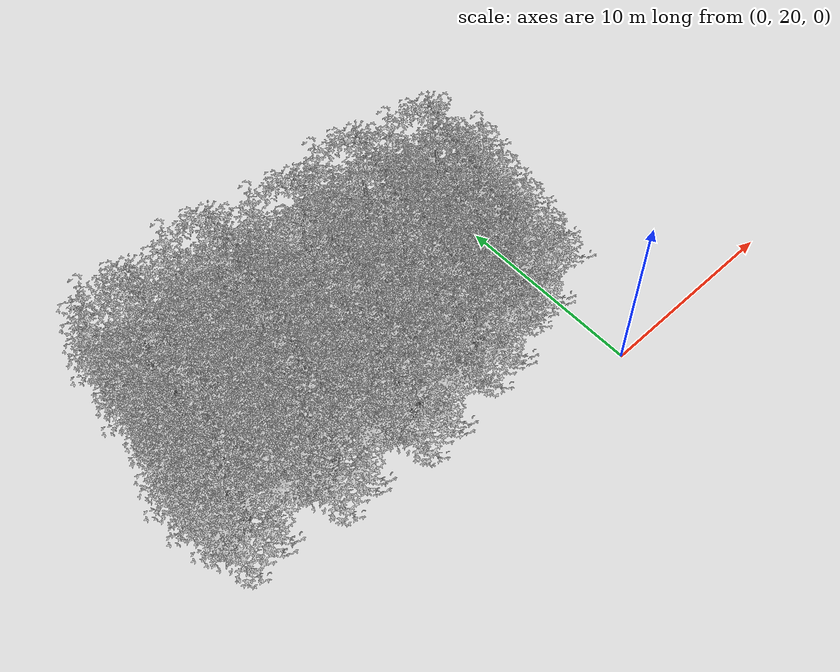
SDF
<sdf version="1.3">
 <world name="default">
  <model name="finihed_7">
   <pose>-2.000000 25.586800 0.000000 0.000000 0.000000 0.000000</pose>
   <static>1</static>
   <link name="link">
    <inertial>
     <mass>10.000000</mass>
     <inertia>
      <ixx>0.001000</ixx>
      <ixy>0.000000</ixy>
      <ixz>0.000000</ixz>
      <iyy>0.001000</iyy>
      <iyz>0.000000</iyz>
      <izz>0.001000</izz>
     </inertia>
    </inertial>
    <collision name="collision">
     <geometry><cylinder><radius>0.150000</radius><length>5.000000</length></cylinder></geometry>
    </collision>
    <visual name="visual">
     <geometry>
      <mesh><uri>model://finihed/meshes/finihed.dae</uri><scale>1.000000 1.000000 1.000000</scale></mesh>
     </geometry>
    </visual>
    <velocity_decay><linear>0.000000</linear><angular>0.000000</angular></velocity_decay>
   </link>
  </model>
  <model name="finihed_8">
   <pose>-1.541750 27.000000 0.000000 0.000000 0.000000 0.000000</pose>
   <static>1</static>
   <link name="link">
    <inertial>
     <mass>10.000000</mass>
     <inertia>
      <ixx>0.001000</ixx>
      <ixy>0.000000</ixy>
      <ixz>0.000000</ixz>
      <iyy>0.001000</iyy>
      <iyz>0.000000</iyz>
      <izz>0.001000</izz>
     </inertia>
    </inertial>
    <collision name="collision">
     <geometry><cylinder><radius>0.150000</radius><length>5.000000</length></cylinder></geometry>
    </collision>
    <visual name="visual">
     <geometry>
      <mesh><uri>model://finihed/meshes/finihed.dae</uri><scale>1.000000 1.000000 1.000000</scale></mesh>
     </geometry>
    </visual>
    <velocity_decay><linear>0.000000</linear><angular>0.000000</angular></velocity_decay>
   </link>
  </model>
  <model name="finihed_9">
   <pose>-1.000000 29.000000 0.000000 0.000000 0.000000 0.000000</pose>
   <static>1</static>
   <link name="link">
    <inertial>
     <mass>10.000000</mass>
     <inertia>
      <ixx>0.001000</ixx>
      <ixy>0.000000</ixy>
      <ixz>0.000000</ixz>
      <iyy>0.001000</iyy>
      <iyz>0.000000</iyz>
      <izz>0.001000</izz>
     </inertia>
    </inertial>
    <collision name="collision">
     <geometry><cylinder><radius>0.150000</radius><length>5.000000</length></cylinder></geometry>
    </collision>
    <visual name="visual">
     <geometry>
      <mesh><uri>model://finihed/meshes/finihed.dae</uri><scale>1.000000 1.000000 1.000000</scale></mesh>
     </geometry>
    </visual>
    <velocity_decay><linear>0.000000</linear><angular>0.000000</angular></velocity_decay>
   </link>
  </model>
  <model name="finihed_15">
   <pose>-5.595620 24.553100 0.000000 0.000000 0.000000 0.000000</pose>
   <static>1</static>
   <link name="link">
    <inertial>
     <mass>10.000000</mass>
     <inertia>
      <ixx>0.001000</ixx>
      <ixy>0.000000</ixy>
      <ixz>0.000000</ixz>
      <iyy>0.001000</iyy>
      <iyz>0.000000</iyz>
      <izz>0.001000</izz>
     </inertia>
    </inertial>
    <collision name="collision">
     <geometry><cylinder><radius>0.150000</radius><length>5.000000</length></cylinder></geometry>
    </collision>
    <visual name="visual">
     <geometry>
      <mesh><uri>model://finihed/meshes/finihed.dae</uri><scale>1.000000 1.000000 1.000000</scale></mesh>
     </geometry>
    </visual>
    <velocity_decay><linear>0.000000</linear><angular>0.000000</angular></velocity_decay>
   </link>
  </model>
  <model name="finihed_16">
   <pose>-5.536400 26.000000 0.000000 0.000000 0.000000 0.000000</pose>
   <static>1</static>
   <link name="link">
    <inertial>
     <mass>10.000000</mass>
     <inertia>
      <ixx>0.001000</ixx>
      <ixy>0.000000</ixy>
      <ixz>0.000000</ixz>
      <iyy>0.001000</iyy>
      <iyz>0.000000</iyz>
      <izz>0.001000</izz>
     </inertia>
    </inertial>
    <collision name="collision">
     <geometry><cylinder><radius>0.150000</radius><length>5.000000</length></cylinder></geometry>
    </collision>
    <visual name="visual">
     <geometry>
      <mesh><uri>model://finihed/meshes/finihed.dae</uri><scale>1.000000 1.000000 1.000000</scale></mesh>
     </geometry>
    </visual>
    <velocity_decay><linear>0.000000</linear><angular>0.000000</angular></velocity_decay>
   </link>
  </model>
  <model name="finihed_17">
   <pose>-5.000000 28.000000 0.000000 0.000000 0.000000 0.000000</pose>
   <static>1</static>
   <link name="link">
    <inertial>
     <mass>10.000000</mass>
     <inertia>
      <ixx>0.001000</ixx>
      <ixy>0.000000</ixy>
      <ixz>0.000000</ixz>
      <iyy>0.001000</iyy>
      <iyz>0.000000</iyz>
      <izz>0.001000</izz>
     </inertia>
    </inertial>
    <collision name="collision">
     <geometry><cylinder><radius>0.150000</radius><length>5.000000</length></cylinder></geometry>
    </collision>
    <visual name="visual">
     <geometry>
      <mesh><uri>model://finihed/meshes/finihed.dae</uri><scale>1.000000 1.000000 1.000000</scale></mesh>
     </geometry>
    </visual>
    <velocity_decay><linear>0.000000</linear><angular>0.000000</angular></velocity_decay>
   </link>
  </model>
  <model name="finihed_24">
   <pose>-10.000000 24.000000 0.000000 0.000000 0.000000 0.000000</pose>
   <static>1</static>
   <link name="link">
    <inertial>
     <mass>10.000000</mass>
     <inertia>
      <ixx>0.001000</ixx>
      <ixy>0.000000</ixy>
      <ixz>0.000000</ixz>
      <iyy>0.001000</iyy>
      <iyz>0.000000</iyz>
      <izz>0.001000</izz>
     </inertia>
    </inertial>
    <collision name="collision">
     <geometry><cylinder><radius>0.150000</radius><length>5.000000</length></cylinder></geometry>
    </collision>
    <visual name="visual">
     <geometry>
      <mesh><uri>model://finihed/meshes/finihed.dae</uri><scale>1.000000 1.000000 1.000000</scale></mesh>
     </geometry>
    </visual>
    <velocity_decay><linear>0.000000</linear><angular>0.000000</angular></velocity_decay>
   </link>
  </model>
  <model name="finihed_25">
   <pose>-10.000000 25.457300 0.000000 0.000000 0.000000 0.000000</pose>
   <static>1</static>
   <link name="link">
    <inertial>
     <mass>10.000000</mass>
     <inertia>
      <ixx>0.001000</ixx>
      <ixy>0.000000</ixy>
      <ixz>0.000000</ixz>
      <iyy>0.001000</iyy>
      <iyz>0.000000</iyz>
      <izz>0.001000</izz>
     </inertia>
    </inertial>
    <collision name="collision">
     <geometry><cylinder><radius>0.150000</radius><length>5.000000</length></cylinder></geometry>
    </collision>
    <visual name="visual">
     <geometry>
      <mesh><uri>model://finihed/meshes/finihed.dae</uri><scale>1.000000 1.000000 1.000000</scale></mesh>
     </geometry>
    </visual>
    <velocity_decay><linear>0.000000</linear><angular>0.000000</angular></velocity_decay>
   </link>
  </model>
  <model name="finihed_26">
   <pose>-9.548600 27.000000 0.000000 0.000000 0.000000 0.000000</pose>
   <static>1</static>
   <link name="link">
    <inertial>
     <mass>10.000000</mass>
     <inertia>
      <ixx>0.001000</ixx>
      <ixy>0.000000</ixy>
      <ixz>0.000000</ixz>
      <iyy>0.001000</iyy>
      <iyz>0.000000</iyz>
      <izz>0.001000</izz>
     </inertia>
    </inertial>
    <collision name="collision">
     <geometry><cylinder><radius>0.150000</radius><length>5.000000</length></cylinder></geometry>
    </collision>
    <visual name="visual">
     <geometry>
      <mesh><uri>model://finihed/meshes/finihed.dae</uri><scale>1.000000 1.000000 1.000000</scale></mesh>
     </geometry>
    </visual>
    <velocity_decay><linear>0.000000</linear><angular>0.000000</angular></velocity_decay>
   </link>
  </model>
  <model name="finihed_27">
   <pose>-9.000000 28.545000 0.000000 0.000000 0.000000 0.000000</pose>
   <static>1</static>
   <link name="link">
    <inertial>
     <mass>10.000000</mass>
     <inertia>
      <ixx>0.001000</ixx>
      <ixy>0.000000</ixy>
      <ixz>0.000000</ixz>
      <iyy>0.001000</iyy>
      <iyz>0.000000</iyz>
      <izz>0.001000</izz>
     </inertia>
    </inertial>
    <collision name="collision">
     <geometry><cylinder><radius>0.150000</radius><length>5.000000</length></cylinder></geometry>
    </collision>
    <visual name="visual">
     <geometry>
      <mesh><uri>model://finihed/meshes/finihed.dae</uri><scale>1.000000 1.000000 1.000000</scale></mesh>
     </geometry>
    </visual>
    <velocity_decay><linear>0.000000</linear><angular>0.000000</angular></velocity_decay>
   </link>
  </model>
  <model name="finihed_28">
   <pose>-9.000000 30.000000 0.000000 0.000000 0.000000 0.000000</pose>
   <static>1</static>
   <link name="link">
    <inertial>
     <mass>10.000000</mass>
     <inertia>
      <ixx>0.001000</ixx>
      <ixy>0.000000</ixy>
      <ixz>0.000000</ixz>
      <iyy>0.001000</iyy>
      <iyz>0.000000</iyz>
      <izz>0.001000</izz>
     </inertia>
    </inertial>
    <collision name="collision">
     <geometry><cylinder><radius>0.150000</radius><length>5.000000</length></cylinder></geometry>
    </collision>
    <visual name="visual">
     <geometry>
      <mesh><uri>model://finihed/meshes/finihed.dae</uri><scale>1.000000 1.000000 1.000000</scale></mesh>
     </geometry>
    </visual>
    <velocity_decay><linear>0.000000</linear><angular>0.000000</angular></velocity_decay>
   </link>
  </model>
  <model name="finihed_29">
   <pose>-5.000000 30.000000 0.000000 0.000000 0.000000 0.000000</pose>
   <static>1</static>
   <link name="link">
    <inertial>
     <mass>10.000000</mass>
     <inertia>
      <ixx>0.001000</ixx>
      <ixy>0.000000</ixy>
      <ixz>0.000000</ixz>
      <iyy>0.001000</iyy>
      <iyz>0.000000</iyz>
      <izz>0.001000</izz>
     </inertia>
    </inertial>
    <collision name="collision">
     <geometry><cylinder><radius>0.150000</radius><length>5.000000</length></cylinder></geometry>
    </collision>
    <visual name="visual">
     <geometry>
      <mesh><uri>model://finihed/meshes/finihed.dae</uri><scale>1.000000 1.000000 1.000000</scale></mesh>
     </geometry>
    </visual>
    <velocity_decay><linear>0.000000</linear><angular>0.000000</angular></velocity_decay>
   </link>
  </model>
  <model name="finihed_30">
   <pose>-0.598205 31.000000 0.000000 0.000000 0.000000 0.000000</pose>
   <static>1</static>
   <link name="link">
    <inertial>
     <mass>10.000000</mass>
     <inertia>
      <ixx>0.001000</ixx>
      <ixy>0.000000</ixy>
      <ixz>0.000000</ixz>
      <iyy>0.001000</iyy>
      <iyz>0.000000</iyz>
      <izz>0.001000</izz>
     </inertia>
    </inertial>
    <collision name="collision">
     <geometry><cylinder><radius>0.150000</radius><length>5.000000</length></cylinder></geometry>
    </collision>
    <visual name="visual">
     <geometry>
      <mesh><uri>model://finihed/meshes/finihed.dae</uri><scale>1.000000 1.000000 1.000000</scale></mesh>
     </geometry>
    </visual>
    <velocity_decay><linear>0.000000</linear><angular>0.000000</angular></velocity_decay>
   </link>
  </model>
  <model name="finihed_31">
   <pose>-9.000000 32.000000 0.000000 0.000000 0.000000 0.000000</pose>
   <static>1</static>
   <link name="link">
    <inertial>
     <mass>10.000000</mass>
     <inertia>
      <ixx>0.001000</ixx>
      <ixy>0.000000</ixy>
      <ixz>0.000000</ixz>
      <iyy>0.001000</iyy>
      <iyz>0.000000</iyz>
      <izz>0.001000</izz>
     </inertia>
    </inertial>
    <collision name="collision">
     <geometry><cylinder><radius>0.150000</radius><length>5.000000</length></cylinder></geometry>
    </collision>
    <visual name="visual">
     <geometry>
      <mesh><uri>model://finihed/meshes/finihed.dae</uri><scale>1.000000 1.000000 1.000000</scale></mesh>
     </geometry>
    </visual>
    <velocity_decay><linear>0.000000</linear><angular>0.000000</angular></velocity_decay>
   </link>
  </model>
  <model name="finihed_32">
   <pose>-4.473840 32.000000 0.000000 0.000000 0.000000 0.000000</pose>
   <static>1</static>
   <link name="link">
    <inertial>
     <mass>10.000000</mass>
     <inertia>
      <ixx>0.001000</ixx>
      <ixy>0.000000</ixy>
      <ixz>0.000000</ixz>
      <iyy>0.001000</iyy>
      <iyz>0.000000</iyz>
      <izz>0.001000</izz>
     </inertia>
    </inertial>
    <collision name="collision">
     <geometry><cylinder><radius>0.150000</radius><length>5.000000</length></cylinder></geometry>
    </collision>
    <visual name="visual">
     <geometry>
      <mesh><uri>model://finihed/meshes/finihed.dae</uri><scale>1.000000 1.000000 1.000000</scale></mesh>
     </geometry>
    </visual>
    <velocity_decay><linear>0.000000</linear><angular>0.000000</angular></velocity_decay>
   </link>
  </model>
  <model name="finihed_33">
   <pose>0.000000 33.000000 0.000000 0.000000 0.000000 0.000000</pose>
   <static>1</static>
   <link name="link">
    <inertial>
     <mass>10.000000</mass>
     <inertia>
      <ixx>0.001000</ixx>
      <ixy>0.000000</ixy>
      <ixz>0.000000</ixz>
      <iyy>0.001000</iyy>
      <iyz>0.000000</iyz>
      <izz>0.001000</izz>
     </inertia>
    </inertial>
    <collision name="collision">
     <geometry><cylinder><radius>0.150000</radius><length>5.000000</length></cylinder></geometry>
    </collision>
    <visual name="visual">
     <geometry>
      <mesh><uri>model://finihed/meshes/finihed.dae</uri><scale>1.000000 1.000000 1.000000</scale></mesh>
     </geometry>
    </visual>
    <velocity_decay><linear>0.000000</linear><angular>0.000000</angular></velocity_decay>
   </link>
  </model>
  <model name="finihed_34">
   <pose>-4.000000 34.000000 0.000000 0.000000 0.000000 0.000000</pose>
   <static>1</static>
   <link name="link">
    <inertial>
     <mass>10.000000</mass>
     <inertia>
      <ixx>0.001000</ixx>
      <ixy>0.000000</ixy>
      <ixz>0.000000</ixz>
      <iyy>0.001000</iyy>
      <iyz>0.000000</iyz>
      <izz>0.001000</izz>
     </inertia>
    </inertial>
    <collision name="collision">
     <geometry><cylinder><radius>0.150000</radius><length>5.000000</length></cylinder></geometry>
    </collision>
    <visual name="visual">
     <geometry>
      <mesh><uri>model://finihed/meshes/finihed.dae</uri><scale>1.000000 1.000000 1.000000</scale></mesh>
     </geometry>
    </visual>
    <velocity_decay><linear>0.000000</linear><angular>0.000000</angular></velocity_decay>
   </link>
  </model>
  <model name="finihed_35">
   <pose>-8.000000 34.000000 0.000000 0.000000 0.000000 0.000000</pose>
   <static>1</static>
   <link name="link">
    <inertial>
     <mass>10.000000</mass>
     <inertia>
      <ixx>0.001000</ixx>
      <ixy>0.000000</ixy>
      <ixz>0.000000</ixz>
      <iyy>0.001000</iyy>
      <iyz>0.000000</iyz>
      <izz>0.001000</izz>
     </inertia>
    </inertial>
    <collision name="collision">
     <geometry><cylinder><radius>0.150000</radius><length>5.000000</length></cylinder></geometry>
    </collision>
    <visual name="visual">
     <geometry>
      <mesh><uri>model://finihed/meshes/finihed.dae</uri><scale>1.000000 1.000000 1.000000</scale></mesh>
     </geometry>
    </visual>
    <velocity_decay><linear>0.000000</linear><angular>0.000000</angular></velocity_decay>
   </link>
  </model>
  <model name="finihed_37">
   <pose>-12.422800 35.000000 0.000000 0.000000 0.000000 0.000000</pose>
   <static>1</static>
   <link name="link">
    <inertial>
     <mass>10.000000</mass>
     <inertia>
      <ixx>0.001000</ixx>
      <ixy>0.000000</ixy>
      <ixz>0.000000</ixz>
      <iyy>0.001000</iyy>
      <iyz>0.000000</iyz>
      <izz>0.001000</izz>
     </inertia>
    </inertial>
    <collision name="collision">
     <geometry><cylinder><radius>0.150000</radius><length>5.000000</length></cylinder></geometry>
    </collision>
    <visual name="visual">
     <geometry>
      <mesh><uri>model://finihed/meshes/finihed.dae</uri><scale>1.000000 1.000000 1.000000</scale></mesh>
     </geometry>
    </visual>
    <velocity_decay><linear>0.000000</linear><angular>0.000000</angular></velocity_decay>
   </link>
  </model>
  <model name="finihed_38">
   <pose>-14.407700 26.000000 0.000000 0.000000 0.000000 0.000000</pose>
   <static>1</static>
   <link name="link">
    <inertial>
     <mass>10.000000</mass>
     <inertia>
      <ixx>0.001000</ixx>
      <ixy>0.000000</ixy>
      <ixz>0.000000</ixz>
      <iyy>0.001000</iyy>
      <iyz>0.000000</iyz>
      <izz>0.001000</izz>
     </inertia>
    </inertial>
    <collision name="collision">
     <geometry><cylinder><radius>0.150000</radius><length>5.000000</length></cylinder></geometry>
    </collision>
    <visual name="visual">
     <geometry>
      <mesh><uri>model://finihed/meshes/finihed.dae</uri><scale>1.000000 1.000000 1.000000</scale></mesh>
     </geometry>
    </visual>
    <velocity_decay><linear>0.000000</linear><angular>0.000000</angular></velocity_decay>
   </link>
  </model>
  <model name="finihed_39">
   <pose>-13.000000 31.000000 0.000000 0.000000 0.000000 0.000000</pose>
   <static>1</static>
   <link name="link">
    <inertial>
     <mass>10.000000</mass>
     <inertia>
      <ixx>0.001000</ixx>
      <ixy>0.000000</ixy>
      <ixz>0.000000</ixz>
      <iyy>0.001000</iyy>
      <iyz>0.000000</iyz>
      <izz>0.001000</izz>
     </inertia>
    </inertial>
    <collision name="collision">
     <geometry><cylinder><radius>0.150000</radius><length>5.000000</length></cylinder></geometry>
    </collision>
    <visual name="visual">
     <geometry>
      <mesh><uri>model://finihed/meshes/finihed.dae</uri><scale>1.000000 1.000000 1.000000</scale></mesh>
     </geometry>
    </visual>
    <velocity_decay><linear>0.000000</linear><angular>0.000000</angular></velocity_decay>
   </link>
  </model>
  <model name="finihed_43">
   <pose>-13.525600 28.434800 0.000000 0.000000 0.000000 0.000000</pose>
   <static>1</static>
   <link name="link">
    <inertial>
     <mass>10.000000</mass>
     <inertia>
      <ixx>0.001000</ixx>
      <ixy>0.000000</ixy>
      <ixz>0.000000</ixz>
      <iyy>0.001000</iyy>
      <iyz>0.000000</iyz>
      <izz>0.001000</izz>
     </inertia>
    </inertial>
    <collision name="collision">
     <geometry><cylinder><radius>0.150000</radius><length>5.000000</length></cylinder></geometry>
    </collision>
    <visual name="visual">
     <geometry>
      <mesh><uri>model://finihed/meshes/finihed.dae</uri><scale>1.000000 1.000000 1.000000</scale></mesh>
     </geometry>
    </visual>
    <velocity_decay><linear>0.000000</linear><angular>0.000000</angular></velocity_decay>
   </link>
  </model>
  <model name="finihed_44">
   <pose>-12.554800 33.422900 0.000000 0.000000 0.000000 0.000000</pose>
   <static>1</static>
   <link name="link">
    <inertial>
     <mass>10.000000</mass>
     <inertia>
      <ixx>0.001000</ixx>
      <ixy>0.000000</ixy>
      <ixz>0.000000</ixz>
      <iyy>0.001000</iyy>
      <iyz>0.000000</iyz>
      <izz>0.001000</izz>
     </inertia>
    </inertial>
    <collision name="collision">
     <geometry><cylinder><radius>0.150000</radius><length>5.000000</length></cylinder></geometry>
    </collision>
    <visual name="visual">
     <geometry>
      <mesh><uri>model://finihed/meshes/finihed.dae</uri><scale>1.000000 1.000000 1.000000</scale></mesh>
     </geometry>
    </visual>
    <velocity_decay><linear>0.000000</linear><angular>0.000000</angular></velocity_decay>
   </link>
  </model>
  <model name="finihed_45">
   <pose>-13.000000 32.000000 0.000000 0.000000 0.000000 0.000000</pose>
   <static>1</static>
   <link name="link">
    <inertial>
     <mass>10.000000</mass>
     <inertia>
      <ixx>0.001000</ixx>
      <ixy>0.000000</ixy>
      <ixz>0.000000</ixz>
      <iyy>0.001000</iyy>
      <iyz>0.000000</iyz>
      <izz>0.001000</izz>
     </inertia>
    </inertial>
    <collision name="collision">
     <geometry><cylinder><radius>0.150000</radius><length>5.000000</length></cylinder></geometry>
    </collision>
    <visual name="visual">
     <geometry>
      <mesh><uri>model://finihed/meshes/finihed.dae</uri><scale>1.000000 1.000000 1.000000</scale></mesh>
     </geometry>
    </visual>
    <velocity_decay><linear>0.000000</linear><angular>0.000000</angular></velocity_decay>
   </link>
  </model>
  <model name="finihed_46">
   <pose>-13.418400 29.466800 0.000000 0.000000 0.000000 0.000000</pose>
   <static>1</static>
   <link name="link">
    <inertial>
     <mass>10.000000</mass>
     <inertia>
      <ixx>0.001000</ixx>
      <ixy>0.000000</ixy>
      <ixz>0.000000</ixz>
      <iyy>0.001000</iyy>
      <iyz>0.000000</iyz>
      <izz>0.001000</izz>
     </inertia>
    </inertial>
    <collision name="collision">
     <geometry><cylinder><radius>0.150000</radius><length>5.000000</length></cylinder></geometry>
    </collision>
    <visual name="visual">
     <geometry>
      <mesh><uri>model://finihed/meshes/finihed.dae</uri><scale>1.000000 1.000000 1.000000</scale></mesh>
     </geometry>
    </visual>
    <velocity_decay><linear>0.000000</linear><angular>0.000000</angular></velocity_decay>
   </link>
  </model>
  <model name="finihed_47">
   <pose>-14.000000 27.000000 0.000000 0.000000 0.000000 0.000000</pose>
   <static>1</static>
   <link name="link">
    <inertial>
     <mass>10.000000</mass>
     <inertia>
      <ixx>0.001000</ixx>
      <ixy>0.000000</ixy>
      <ixz>0.000000</ixz>
      <iyy>0.001000</iyy>
      <iyz>0.000000</iyz>
      <izz>0.001000</izz>
     </inertia>
    </inertial>
    <collision name="collision">
     <geometry><cylinder><radius>0.150000</radius><length>5.000000</length></cylinder></geometry>
    </collision>
    <visual name="visual">
     <geometry>
      <mesh><uri>model://finihed/meshes/finihed.dae</uri><scale>1.000000 1.000000 1.000000</scale></mesh>
     </geometry>
    </visual>
    <velocity_decay><linear>0.000000</linear><angular>0.000000</angular></velocity_decay>
   </link>
  </model>
  <model name="finihed_48">
   <pose>-14.441000 24.433000 0.000000 0.000000 0.000000 0.000000</pose>
   <static>1</static>
   <link name="link">
    <inertial>
     <mass>10.000000</mass>
     <inertia>
      <ixx>0.001000</ixx>
      <ixy>0.000000</ixy>
      <ixz>0.000000</ixz>
      <iyy>0.001000</iyy>
      <iyz>0.000000</iyz>
      <izz>0.001000</izz>
     </inertia>
    </inertial>
    <collision name="collision">
     <geometry><cylinder><radius>0.150000</radius><length>5.000000</length></cylinder></geometry>
    </collision>
    <visual name="visual">
     <geometry>
      <mesh><uri>model://finihed/meshes/finihed.dae</uri><scale>1.000000 1.000000 1.000000</scale></mesh>
     </geometry>
    </visual>
    <velocity_decay><linear>0.000000</linear><angular>0.000000</angular></velocity_decay>
   </link>
  </model>
  <model name="finihed_53">
   <pose>-17.000000 35.000000 0.000000 0.000000 0.000000 0.000000</pose>
   <static>1</static>
   <link name="link">
    <inertial>
     <mass>10.000000</mass>
     <inertia>
      <ixx>0.001000</ixx>
      <ixy>0.000000</ixy>
      <ixz>0.000000</ixz>
      <iyy>0.001000</iyy>
      <iyz>0.000000</iyz>
      <izz>0.001000</izz>
     </inertia>
    </inertial>
    <collision name="collision">
     <geometry><cylinder><radius>0.150000</radius><length>5.000000</length></cylinder></geometry>
    </collision>
    <visual name="visual">
     <geometry>
      <mesh><uri>model://finihed/meshes/finihed.dae</uri><scale>1.000000 1.000000 1.000000</scale></mesh>
     </geometry>
    </visual>
    <velocity_decay><linear>0.000000</linear><angular>0.000000</angular></velocity_decay>
   </link>
  </model>
  <model name="finihed_54">
   <pose>-19.000000 25.000000 0.000000 0.000000 0.000000 0.000000</pose>
   <static>1</static>
   <link name="link">
    <inertial>
     <mass>10.000000</mass>
     <inertia>
      <ixx>0.001000</ixx>
      <ixy>0.000000</ixy>
      <ixz>0.000000</ixz>
      <iyy>0.001000</iyy>
      <iyz>0.000000</iyz>
      <izz>0.001000</izz>
     </inertia>
    </inertial>
    <collision name="collision">
     <geometry><cylinder><radius>0.150000</radius><length>5.000000</length></cylinder></geometry>
    </collision>
    <visual name="visual">
     <geometry>
      <mesh><uri>model://finihed/meshes/finihed.dae</uri><scale>1.000000 1.000000 1.000000</scale></mesh>
     </geometry>
    </visual>
    <velocity_decay><linear>0.000000</linear><angular>0.000000</angular></velocity_decay>
   </link>
  </model>
  <model name="finihed_56">
   <pose>-18.000000 29.000000 0.000000 0.000000 0.000000 0.000000</pose>
   <static>1</static>
   <link name="link">
    <inertial>
     <mass>10.000000</mass>
     <inertia>
      <ixx>0.001000</ixx>
      <ixy>0.000000</ixy>
      <ixz>0.000000</ixz>
      <iyy>0.001000</iyy>
      <iyz>0.000000</iyz>
      <izz>0.001000</izz>
     </inertia>
    </inertial>
    <collision name="collision">
     <geometry><cylinder><radius>0.150000</radius><length>5.000000</length></cylinder></geometry>
    </collision>
    <visual name="visual">
     <geometry>
      <mesh><uri>model://finihed/meshes/finihed.dae</uri><scale>1.000000 1.000000 1.000000</scale></mesh>
     </geometry>
    </visual>
    <velocity_decay><linear>0.000000</linear><angular>0.000000</angular></velocity_decay>
   </link>
  </model>
  <model name="finihed_57">
   <pose>-17.570600 32.000000 0.000000 0.000000 0.000000 0.000000</pose>
   <static>1</static>
   <link name="link">
    <inertial>
     <mass>10.000000</mass>
     <inertia>
      <ixx>0.001000</ixx>
      <ixy>0.000000</ixy>
      <ixz>0.000000</ixz>
      <iyy>0.001000</iyy>
      <iyz>0.000000</iyz>
      <izz>0.001000</izz>
     </inertia>
    </inertial>
    <collision name="collision">
     <geometry><cylinder><radius>0.150000</radius><length>5.000000</length></cylinder></geometry>
    </collision>
    <visual name="visual">
     <geometry>
      <mesh><uri>model://finihed/meshes/finihed.dae</uri><scale>1.000000 1.000000 1.000000</scale></mesh>
     </geometry>
    </visual>
    <velocity_decay><linear>0.000000</linear><angular>0.000000</angular></velocity_decay>
   </link>
  </model>
  <model name="finihed_58">
   <pose>-18.000000 28.000000 0.000000 0.000000 0.000000 0.000000</pose>
   <static>1</static>
   <link name="link">
    <inertial>
     <mass>10.000000</mass>
     <inertia>
      <ixx>0.001000</ixx>
      <ixy>0.000000</ixy>
      <ixz>0.000000</ixz>
      <iyy>0.001000</iyy>
      <iyz>0.000000</iyz>
      <izz>0.001000</izz>
     </inertia>
    </inertial>
    <collision name="collision">
     <geometry><cylinder><radius>0.150000</radius><length>5.000000</length></cylinder></geometry>
    </collision>
    <visual name="visual">
     <geometry>
      <mesh><uri>model://finihed/meshes/finihed.dae</uri><scale>1.000000 1.000000 1.000000</scale></mesh>
     </geometry>
    </visual>
    <velocity_decay><linear>0.000000</linear><angular>0.000000</angular></velocity_decay>
   </link>
  </model>
  <model name="finihed_59">
   <pose>-19.000000 26.553600 0.000000 0.000000 0.000000 0.000000</pose>
   <static>1</static>
   <link name="link">
    <inertial>
     <mass>10.000000</mass>
     <inertia>
      <ixx>0.001000</ixx>
      <ixy>0.000000</ixy>
      <ixz>0.000000</ixz>
      <iyy>0.001000</iyy>
      <iyz>0.000000</iyz>
      <izz>0.001000</izz>
     </inertia>
    </inertial>
    <collision name="collision">
     <geometry><cylinder><radius>0.150000</radius><length>5.000000</length></cylinder></geometry>
    </collision>
    <visual name="visual">
     <geometry>
      <mesh><uri>model://finihed/meshes/finihed.dae</uri><scale>1.000000 1.000000 1.000000</scale></mesh>
     </geometry>
    </visual>
    <velocity_decay><linear>0.000000</linear><angular>0.000000</angular></velocity_decay>
   </link>
  </model>
  <model name="finihed_67">
   <pose>-18.000000 31.000000 0.000000 0.000000 0.000000 0.000000</pose>
   <static>1</static>
   <link name="link">
    <inertial>
     <mass>10.000000</mass>
     <inertia>
      <ixx>0.001000</ixx>
      <ixy>0.000000</ixy>
      <ixz>0.000000</ixz>
      <iyy>0.001000</iyy>
      <iyz>0.000000</iyz>
      <izz>0.001000</izz>
     </inertia>
    </inertial>
    <collision name="collision">
     <geometry><cylinder><radius>0.150000</radius><length>5.000000</length></cylinder></geometry>
    </collision>
    <visual name="visual">
     <geometry>
      <mesh><uri>model://finihed/meshes/finihed.dae</uri><scale>1.000000 1.000000 1.000000</scale></mesh>
     </geometry>
    </visual>
    <velocity_decay><linear>0.000000</linear><angular>0.000000</angular></velocity_decay>
   </link>
  </model>
  <model name="finihed_68">
   <pose>-17.535000 34.000000 0.000000 0.000000 0.000000 0.000000</pose>
   <static>1</static>
   <link name="link">
    <inertial>
     <mass>10.000000</mass>
     <inertia>
      <ixx>0.001000</ixx>
      <ixy>0.000000</ixy>
      <ixz>0.000000</ixz>
      <iyy>0.001000</iyy>
      <iyz>0.000000</iyz>
      <izz>0.001000</izz>
     </inertia>
    </inertial>
    <collision name="collision">
     <geometry><cylinder><radius>0.150000</radius><length>5.000000</length></cylinder></geometry>
    </collision>
    <visual name="visual">
     <geometry>
      <mesh><uri>model://finihed/meshes/finihed.dae</uri><scale>1.000000 1.000000 1.000000</scale></mesh>
     </geometry>
    </visual>
    <velocity_decay><linear>0.000000</linear><angular>0.000000</angular></velocity_decay>
   </link>
  </model>
 </world>
</sdf>
